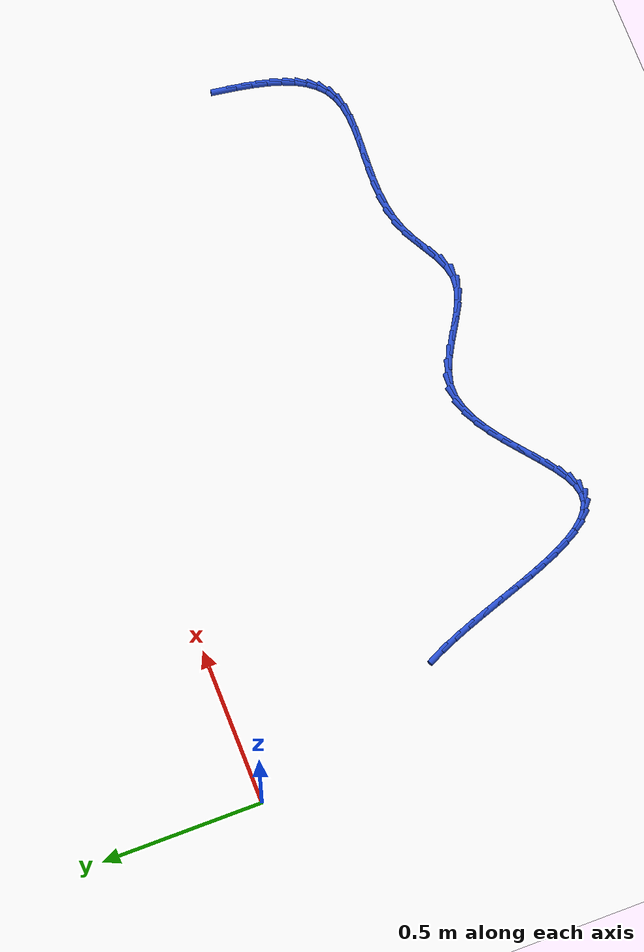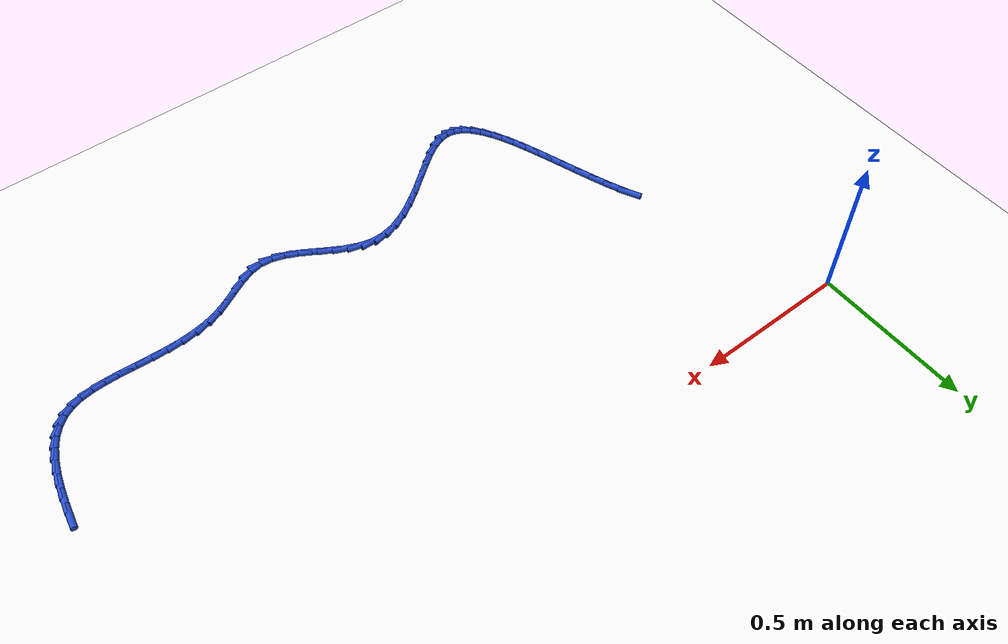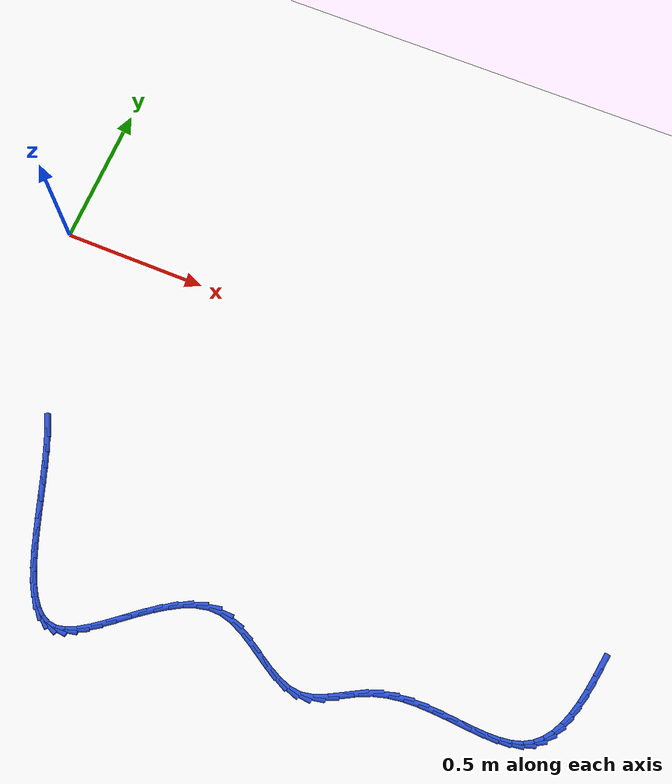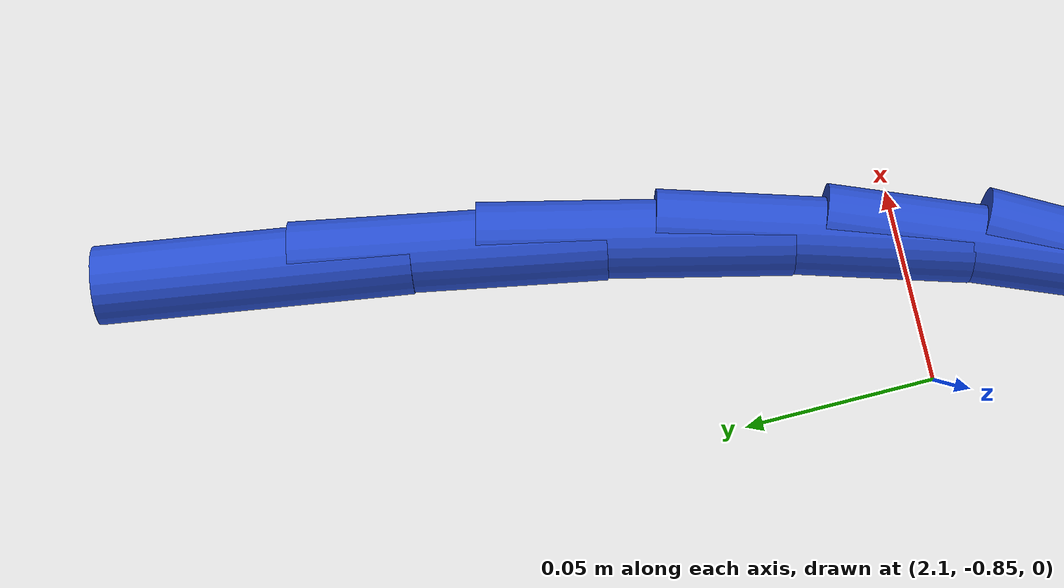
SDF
<sdf version="1.6">
 <world name="default">
  <model name="ground_plane">
   <static>1</static>
   <link name="link">
    <collision name="collision">
     <geometry><plane><normal>0 0 1</normal><size>100 100</size></plane></geometry>
     <surface><friction><ode><mu>100</mu><mu2>50</mu2></ode></friction></surface>
    </collision>
    <visual name="visual">
     <cast_shadows>0</cast_shadows>
     <geometry><plane><normal>0 0 1</normal><size>100 100</size></plane></geometry>
     <material>
      <script><uri>file://media/materials/scripts/gazebo.material</uri><name>Gazebo/WhiteGlow</name></script>
     </material>
    </visual>
   </link>
  </model>
  <model name="line">
   <link name="link_104">
    <pose>2.1703468526651086 -0.6886057318731035 0.01 0 1.57 1.4190917452665543</pose>
    <collision name="collision">
     <geometry><cylinder><radius>0.01</radius><length>0.08</length></cylinder></geometry>
    </collision>
    <visual name="visual">
     <material>
      <script><name>Gazebo/Blue</name><uri>file://media/materials/scripts/gazebo.material</uri></script>
     </material>
     <geometry><cylinder><radius>0.01</radius><length>0.08</length></cylinder></geometry>
    </visual>
   </link>
   <link name="link_105">
    <pose>2.1628964918792097 -0.7373393820390889 0.01 0 1.57 1.3857760278045292</pose>
    <collision name="collision">
     <geometry><cylinder><radius>0.01</radius><length>0.08</length></cylinder></geometry>
    </collision>
    <visual name="visual">
     <material>
      <script><name>Gazebo/Blue</name><uri>file://media/materials/scripts/gazebo.material</uri></script>
     </material>
     <geometry><cylinder><radius>0.01</radius><length>0.08</length></cylinder></geometry>
    </visual>
   </link>
   <link name="link_106">
    <pose>2.154196091205407 -0.7838256030349702 0.01 0 1.57 1.3380097028746802</pose>
    <collision name="collision">
     <geometry><cylinder><radius>0.01</radius><length>0.08</length></cylinder></geometry>
    </collision>
    <visual name="visual">
     <material>
      <script><name>Gazebo/Blue</name><uri>file://media/materials/scripts/gazebo.material</uri></script>
     </material>
     <geometry><cylinder><radius>0.01</radius><length>0.08</length></cylinder></geometry>
    </visual>
   </link>
   <link name="link_107">
    <pose>2.1438269657012787 -0.8275615597880047 0.01 0 1.57 1.2722912698321056</pose>
    <collision name="collision">
     <geometry><cylinder><radius>0.01</radius><length>0.08</length></cylinder></geometry>
    </collision>
    <visual name="visual">
     <material>
      <script><name>Gazebo/Blue</name><uri>file://media/materials/scripts/gazebo.material</uri></script>
     </material>
     <geometry><cylinder><radius>0.01</radius><length>0.08</length></cylinder></geometry>
    </visual>
   </link>
   <link name="link_108">
    <pose>2.1313704304244028 -0.8680444172254503 0.01 0 1.57 1.183925057848256</pose>
    <collision name="collision">
     <geometry><cylinder><radius>0.01</radius><length>0.08</length></cylinder></geometry>
    </collision>
    <visual name="visual">
     <material>
      <script><name>Gazebo/Blue</name><uri>file://media/materials/scripts/gazebo.material</uri></script>
     </material>
     <geometry><cylinder><radius>0.01</radius><length>0.08</length></cylinder></geometry>
    </visual>
   </link>
   <link name="link_109">
    <pose>2.116407800432357 -0.9047713402745656 0.01 0 1.57 1.0672457691711228</pose>
    <collision name="collision">
     <geometry><cylinder><radius>0.01</radius><length>0.08</length></cylinder></geometry>
    </collision>
    <visual name="visual">
     <material>
      <script><name>Gazebo/Blue</name><uri>file://media/materials/scripts/gazebo.material</uri></script>
     </material>
     <geometry><cylinder><radius>0.01</radius><length>0.08</length></cylinder></geometry>
    </visual>
   </link>
   <link name="link_110">
    <pose>2.0985203907827183 -0.9372394938626057 0.01 0 1.57 0.9169594524248734</pose>
    <collision name="collision">
     <geometry><cylinder><radius>0.01</radius><length>0.08</length></cylinder></geometry>
    </collision>
    <visual name="visual">
     <material>
      <script><name>Gazebo/Blue</name><uri>file://media/materials/scripts/gazebo.material</uri></script>
     </material>
     <geometry><cylinder><radius>0.01</radius><length>0.08</length></cylinder></geometry>
    </visual>
   </link>
   <link name="link_111">
    <pose>2.0772895165330656 -0.9649460429168301 0.01 0 1.57 0.7316730152754719</pose>
    <collision name="collision">
     <geometry><cylinder><radius>0.01</radius><length>0.08</length></cylinder></geometry>
    </collision>
    <visual name="visual">
     <material>
      <script><name>Gazebo/Blue</name><uri>file://media/materials/scripts/gazebo.material</uri></script>
     </material>
     <geometry><cylinder><radius>0.01</radius><length>0.08</length></cylinder></geometry>
    </visual>
   </link>
   <link name="link_112">
    <pose>2.0522964927409766 -0.9873881523644956 0.01 0 1.57 0.519252090926155</pose>
    <collision name="collision">
     <geometry><cylinder><radius>0.01</radius><length>0.08</length></cylinder></geometry>
    </collision>
    <visual name="visual">
     <material>
      <script><name>Gazebo/Blue</name><uri>file://media/materials/scripts/gazebo.material</uri></script>
     </material>
     <geometry><cylinder><radius>0.01</radius><length>0.08</length></cylinder></geometry>
    </visual>
   </link>
   <link name="link_113">
    <pose>2.0231226541383864 -1.0040630188250987 0.01 0 1.57 0.30926762508102007</pose>
    <collision name="collision">
     <geometry><cylinder><radius>0.01</radius><length>0.08</length></cylinder></geometry>
    </collision>
    <visual name="visual">
     <material>
      <script><name>Gazebo/Blue</name><uri>file://media/materials/scripts/gazebo.material</uri></script>
     </material>
     <geometry><cylinder><radius>0.01</radius><length>0.08</length></cylinder></geometry>
    </visual>
   </link>
   <link name="link_114">
    <pose>1.9895495242676668 -1.0147903110101992 0.01 0 1.57 0.1512554055576779</pose>
    <collision name="collision">
     <geometry><cylinder><radius>0.01</radius><length>0.08</length></cylinder></geometry>
    </collision>
    <visual name="visual">
     <material>
      <script><name>Gazebo/Blue</name><uri>file://media/materials/scripts/gazebo.material</uri></script>
     </material>
     <geometry><cylinder><radius>0.01</radius><length>0.08</length></cylinder></geometry>
    </visual>
   </link>
   <link name="link_115">
    <pose>1.9520514644036886 -1.020505748186707 0.01 0 1.57 0.04606126556036913</pose>
    <collision name="collision">
     <geometry><cylinder><radius>0.01</radius><length>0.08</length></cylinder></geometry>
    </collision>
    <visual name="visual">
     <material>
      <script><name>Gazebo/Blue</name><uri>file://media/materials/scripts/gazebo.material</uri></script>
     </material>
     <geometry><cylinder><radius>0.01</radius><length>0.08</length></cylinder></geometry>
    </visual>
   </link>
   <link name="link_116">
    <pose>1.911252618081356 -1.0223863248388678 0.01 0 1.57 -0.017876891020092205</pose>
    <collision name="collision">
     <geometry><cylinder><radius>0.01</radius><length>0.08</length></cylinder></geometry>
    </collision>
    <visual name="visual">
     <material>
      <script><name>Gazebo/Blue</name><uri>file://media/materials/scripts/gazebo.material</uri></script>
     </material>
     <geometry><cylinder><radius>0.01</radius><length>0.08</length></cylinder></geometry>
    </visual>
   </link>
   <link name="link_117">
    <pose>1.867777128835569 -1.0216090354509264 0.01 0 1.57 -0.04955878729454385</pose>
    <collision name="collision">
     <geometry><cylinder><radius>0.01</radius><length>0.08</length></cylinder></geometry>
    </collision>
    <visual name="visual">
     <material>
      <script><name>Gazebo/Blue</name><uri>file://media/materials/scripts/gazebo.material</uri></script>
     </material>
     <geometry><cylinder><radius>0.01</radius><length>0.08</length></cylinder></geometry>
    </visual>
   </link>
   <link name="link_118">
    <pose>1.8222491402012297 -1.0193508745071282 0.01 0 1.57 -0.054508078883641335</pose>
    <collision name="collision">
     <geometry><cylinder><radius>0.01</radius><length>0.08</length></cylinder></geometry>
    </collision>
    <visual name="visual">
     <material>
      <script><name>Gazebo/Blue</name><uri>file://media/materials/scripts/gazebo.material</uri></script>
     </material>
     <geometry><cylinder><radius>0.01</radius><length>0.08</length></cylinder></geometry>
    </visual>
   </link>
   <link name="link_119">
    <pose>1.7752927957132385 -1.0167888364917177 0.01 0 1.57 -0.035347517940446646</pose>
    <collision name="collision">
     <geometry><cylinder><radius>0.01</radius><length>0.08</length></cylinder></geometry>
    </collision>
    <visual name="visual">
     <material>
      <script><name>Gazebo/Blue</name><uri>file://media/materials/scripts/gazebo.material</uri></script>
     </material>
     <geometry><cylinder><radius>0.01</radius><length>0.08</length></cylinder></geometry>
    </visual>
   </link>
   <link name="link_120">
    <pose>1.7275322389064969 -1.0150999158889402 0.01 0 1.57 0.007533995557105325</pose>
    <collision name="collision">
     <geometry><cylinder><radius>0.01</radius><length>0.08</length></cylinder></geometry>
    </collision>
    <visual name="visual">
     <material>
      <script><name>Gazebo/Blue</name><uri>file://media/materials/scripts/gazebo.material</uri></script>
     </material>
     <geometry><cylinder><radius>0.01</radius><length>0.08</length></cylinder></geometry>
    </visual>
   </link>
   <link name="link_121">
    <pose>1.6795916133159072 -1.0154611071830408 0.01 0 1.57 0.0754053515830477</pose>
    <collision name="collision">
     <geometry><cylinder><radius>0.01</radius><length>0.08</length></cylinder></geometry>
    </collision>
    <visual name="visual">
     <material>
      <script><name>Gazebo/Blue</name><uri>file://media/materials/scripts/gazebo.material</uri></script>
     </material>
     <geometry><cylinder><radius>0.01</radius><length>0.08</length></cylinder></geometry>
    </visual>
   </link>
   <link name="link_122">
    <pose>1.6320950624763708 -1.0190494048582643 0.01 0 1.57 0.170474024691983</pose>
    <collision name="collision">
     <geometry><cylinder><radius>0.01</radius><length>0.08</length></cylinder></geometry>
    </collision>
    <visual name="visual">
     <material>
      <script><name>Gazebo/Blue</name><uri>file://media/materials/scripts/gazebo.material</uri></script>
     </material>
     <geometry><cylinder><radius>0.01</radius><length>0.08</length></cylinder></geometry>
    </visual>
   </link>
   <link name="link_123">
    <pose>1.5856667299227891 -1.0270418033988564 0.01 0 1.57 0.2945854232482009</pose>
    <collision name="collision">
     <geometry><cylinder><radius>0.01</radius><length>0.08</length></cylinder></geometry>
    </collision>
    <visual name="visual">
     <material>
      <script><name>Gazebo/Blue</name><uri>file://media/materials/scripts/gazebo.material</uri></script>
     </material>
     <geometry><cylinder><radius>0.01</radius><length>0.08</length></cylinder></geometry>
    </visual>
   </link>
   <link name="link_124">
    <pose>1.5409307591900634 -1.0406152972890614 0.01 0 1.57 0.4301657949354855</pose>
    <collision name="collision">
     <geometry><cylinder><radius>0.01</radius><length>0.08</length></cylinder></geometry>
    </collision>
    <visual name="visual">
     <material>
      <script><name>Gazebo/Blue</name><uri>file://media/materials/scripts/gazebo.material</uri></script>
     </material>
     <geometry><cylinder><radius>0.01</radius><length>0.08</length></cylinder></geometry>
    </visual>
   </link>
   <link name="link_125">
    <pose>1.498328036611697 -1.0601623511371168 0.01 0 1.57 0.5040852747592641</pose>
    <collision name="collision">
     <geometry><cylinder><radius>0.01</radius><length>0.08</length></cylinder></geometry>
    </collision>
    <visual name="visual">
     <material>
      <script><name>Gazebo/Blue</name><uri>file://media/materials/scripts/gazebo.material</uri></script>
     </material>
     <geometry><cylinder><radius>0.01</radius><length>0.08</length></cylinder></geometry>
    </visual>
   </link>
   <link name="link_126">
    <pose>1.4575063945095406 -1.0826803402413827 0.01 0 1.57 0.4986494217577115</pose>
    <collision name="collision">
     <geometry><cylinder><radius>0.01</radius><length>0.08</length></cylinder></geometry>
    </collision>
    <visual name="visual">
     <material>
      <script><name>Gazebo/Blue</name><uri>file://media/materials/scripts/gazebo.material</uri></script>
     </material>
     <geometry><cylinder><radius>0.01</radius><length>0.08</length></cylinder></geometry>
    </visual>
   </link>
   <link name="link_127">
    <pose>1.4178991866377124 -1.1042484503673156 0.01 0 1.57 0.40490275478351334</pose>
    <collision name="collision">
     <geometry><cylinder><radius>0.01</radius><length>0.08</length></cylinder></geometry>
    </collision>
    <visual name="visual">
     <material>
      <script><name>Gazebo/Blue</name><uri>file://media/materials/scripts/gazebo.material</uri></script>
     </material>
     <geometry><cylinder><radius>0.01</radius><length>0.08</length></cylinder></geometry>
    </visual>
   </link>
   <link name="link_128">
    <pose>1.3789397631707607 -1.120945851956137 0.01 0 1.57 0.2006147724476033</pose>
    <collision name="collision">
     <geometry><cylinder><radius>0.01</radius><length>0.08</length></cylinder></geometry>
    </collision>
    <visual name="visual">
     <material>
      <script><name>Gazebo/Blue</name><uri>file://media/materials/scripts/gazebo.material</uri></script>
     </material>
     <geometry><cylinder><radius>0.01</radius><length>0.08</length></cylinder></geometry>
    </visual>
   </link>
   <link name="link_129">
    <pose>1.3400614779119584 -1.1288517570813905 0.01 0 1.57 -0.09038112017274956</pose>
    <collision name="collision">
     <geometry><cylinder><radius>0.01</radius><length>0.08</length></cylinder></geometry>
    </collision>
    <visual name="visual">
     <material>
      <script><name>Gazebo/Blue</name><uri>file://media/materials/scripts/gazebo.material</uri></script>
     </material>
     <geometry><cylinder><radius>0.01</radius><length>0.08</length></cylinder></geometry>
    </visual>
   </link>
   <link name="link_130">
    <pose>1.3008065298936833 -1.1252941585871317 0.01 0 1.57 -0.32038771802011</pose>
    <collision name="collision">
     <geometry><cylinder><radius>0.01</radius><length>0.08</length></cylinder></geometry>
    </collision>
    <visual name="visual">
     <material>
      <script><name>Gazebo/Blue</name><uri>file://media/materials/scripts/gazebo.material</uri></script>
     </material>
     <geometry><cylinder><radius>0.01</radius><length>0.08</length></cylinder></geometry>
    </visual>
   </link>
   <link name="link_131">
    <pose>1.2611112103596285 -1.1121224672917622 0.01 0 1.57 -0.460817163848662</pose>
    <collision name="collision">
     <geometry><cylinder><radius>0.01</radius><length>0.08</length></cylinder></geometry>
    </collision>
    <visual name="visual">
     <material>
      <script><name>Gazebo/Blue</name><uri>file://media/materials/scripts/gazebo.material</uri></script>
     </material>
     <geometry><cylinder><radius>0.01</radius><length>0.08</length></cylinder></geometry>
    </visual>
   </link>
   <link name="link_132">
    <pose>1.2210009735832577 -1.0922090610093877 0.01 0 1.57 -0.5309787990489399</pose>
    <collision name="collision">
     <geometry><cylinder><radius>0.01</radius><length>0.08</length></cylinder></geometry>
    </collision>
    <visual name="visual">
     <material>
      <script><name>Gazebo/Blue</name><uri>file://media/materials/scripts/gazebo.material</uri></script>
     </material>
     <geometry><cylinder><radius>0.01</radius><length>0.08</length></cylinder></geometry>
    </visual>
   </link>
   <link name="link_133">
    <pose>1.180501273838031 -1.0684263175541142 0.01 0 1.57 -0.5451112040606868</pose>
    <collision name="collision">
     <geometry><cylinder><radius>0.01</radius><length>0.08</length></cylinder></geometry>
    </collision>
    <visual name="visual">
     <material>
      <script><name>Gazebo/Blue</name><uri>file://media/materials/scripts/gazebo.material</uri></script>
     </material>
     <geometry><cylinder><radius>0.01</radius><length>0.08</length></cylinder></geometry>
    </visual>
   </link>
   <link name="link_134">
    <pose>1.1396375653974105 -1.0436466147400476 0.01 0 1.57 -0.5073606802782107</pose>
    <collision name="collision">
     <geometry><cylinder><radius>0.01</radius><length>0.08</length></cylinder></geometry>
    </collision>
    <visual name="visual">
     <material>
      <script><name>Gazebo/Blue</name><uri>file://media/materials/scripts/gazebo.material</uri></script>
     </material>
     <geometry><cylinder><radius>0.01</radius><length>0.08</length></cylinder></geometry>
    </visual>
   </link>
   <link name="link_135">
    <pose>1.0984353025348585 -1.0207423303812944 0.01 0 1.57 -0.4122793582619524</pose>
    <collision name="collision">
     <geometry><cylinder><radius>0.01</radius><length>0.08</length></cylinder></geometry>
    </collision>
    <visual name="visual">
     <material>
      <script><name>Gazebo/Blue</name><uri>file://media/materials/scripts/gazebo.material</uri></script>
     </material>
     <geometry><cylinder><radius>0.01</radius><length>0.08</length></cylinder></geometry>
    </visual>
   </link>
   <link name="link_136">
    <pose>1.056919939523836 -1.00258584229196 0.01 0 1.57 -0.24690411962266706</pose>
    <collision name="collision">
     <geometry><cylinder><radius>0.01</radius><length>0.08</length></cylinder></geometry>
    </collision>
    <visual name="visual">
     <material>
      <script><name>Gazebo/Blue</name><uri>file://media/materials/scripts/gazebo.material</uri></script>
     </material>
     <geometry><cylinder><radius>0.01</radius><length>0.08</length></cylinder></geometry>
    </visual>
   </link>
   <link name="link_137">
    <pose>1.0151169306378045 -0.9920495282861506 0.01 0 1.57 -0.008073643543524316</pose>
    <collision name="collision">
     <geometry><cylinder><radius>0.01</radius><length>0.08</length></cylinder></geometry>
    </collision>
    <visual name="visual">
     <material>
      <script><name>Gazebo/Blue</name><uri>file://media/materials/scripts/gazebo.material</uri></script>
     </material>
     <geometry><cylinder><radius>0.01</radius><length>0.08</length></cylinder></geometry>
    </visual>
   </link>
   <link name="link_138">
    <pose>0.9730642956523036 -0.9917100029240042 0.01 0 1.57 0.22386008948863376</pose>
    <collision name="collision">
     <geometry><cylinder><radius>0.01</radius><length>0.08</length></cylinder></geometry>
    </collision>
    <visual name="visual">
     <material>
      <script><name>Gazebo/Blue</name><uri>file://media/materials/scripts/gazebo.material</uri></script>
     </material>
     <geometry><cylinder><radius>0.01</radius><length>0.08</length></cylinder></geometry>
    </visual>
   </link>
   <link name="link_139">
    <pose>0.9309206599537849 -1.0013050998149735 0.01 0 1.57 0.3984759741118265</pose>
    <collision name="collision">
     <geometry><cylinder><radius>0.01</radius><length>0.08</length></cylinder></geometry>
    </collision>
    <visual name="visual">
     <material>
      <script><name>Gazebo/Blue</name><uri>file://media/materials/scripts/gazebo.material</uri></script>
     </material>
     <geometry><cylinder><radius>0.01</radius><length>0.08</length></cylinder></geometry>
    </visual>
   </link>
   <link name="link_140">
    <pose>0.8889118574026534 -1.0189907184102702 0.01 0 1.57 0.5212504432036695</pose>
    <collision name="collision">
     <geometry><cylinder><radius>0.01</radius><length>0.08</length></cylinder></geometry>
    </collision>
    <visual name="visual">
     <material>
      <script><name>Gazebo/Blue</name><uri>file://media/materials/scripts/gazebo.material</uri></script>
     </material>
     <geometry><cylinder><radius>0.01</radius><length>0.08</length></cylinder></geometry>
    </visual>
   </link>
   <link name="link_141">
    <pose>0.8472644493637882 -1.0429056343653877 0.01 0 1.57 0.6031900234459827</pose>
    <collision name="collision">
     <geometry><cylinder><radius>0.01</radius><length>0.08</length></cylinder></geometry>
    </collision>
    <visual name="visual">
     <material>
      <script><name>Gazebo/Blue</name><uri>file://media/materials/scripts/gazebo.material</uri></script>
     </material>
     <geometry><cylinder><radius>0.01</radius><length>0.08</length></cylinder></geometry>
    </visual>
   </link>
   <link name="link_142">
    <pose>0.8062049972020676 -1.0711886233358205 0.01 0 1.57 0.6530707908356759</pose>
    <collision name="collision">
     <geometry><cylinder><radius>0.01</radius><length>0.08</length></cylinder></geometry>
    </collision>
    <visual name="visual">
     <material>
      <script><name>Gazebo/Blue</name><uri>file://media/materials/scripts/gazebo.material</uri></script>
     </material>
     <geometry><cylinder><radius>0.01</radius><length>0.08</length></cylinder></geometry>
    </visual>
   </link>
   <link name="link_143">
    <pose>0.7659600622823726 -1.1019784609770615 0.01 0 1.57 0.6758656412653449</pose>
    <collision name="collision">
     <geometry><cylinder><radius>0.01</radius><length>0.08</length></cylinder></geometry>
    </collision>
    <visual name="visual">
     <material>
      <script><name>Gazebo/Blue</name><uri>file://media/materials/scripts/gazebo.material</uri></script>
     </material>
     <geometry><cylinder><radius>0.01</radius><length>0.08</length></cylinder></geometry>
    </visual>
   </link>
   <link name="link_144">
    <pose>0.7267562059695813 -1.1334139229446043 0.01 0 1.57 0.672662266325568</pose>
    <collision name="collision">
     <geometry><cylinder><radius>0.01</radius><length>0.08</length></cylinder></geometry>
    </collision>
    <visual name="visual">
     <material>
      <script><name>Gazebo/Blue</name><uri>file://media/materials/scripts/gazebo.material</uri></script>
     </material>
     <geometry><cylinder><radius>0.01</radius><length>0.08</length></cylinder></geometry>
    </visual>
   </link>
   <link name="link_145">
    <pose>0.6888199896285734 -1.1636337848939438 0.01 0 1.57 0.6401828813244004</pose>
    <collision name="collision">
     <geometry><cylinder><radius>0.01</radius><length>0.08</length></cylinder></geometry>
    </collision>
    <visual name="visual">
     <material>
      <script><name>Gazebo/Blue</name><uri>file://media/materials/scripts/gazebo.material</uri></script>
     </material>
     <geometry><cylinder><radius>0.01</radius><length>0.08</length></cylinder></geometry>
    </visual>
   </link>
   <link name="link_146">
    <pose>0.6523779746242281 -1.1907768224805735 0.01 0 1.57 0.5689736905161288</pose>
    <collision name="collision">
     <geometry><cylinder><radius>0.01</radius><length>0.08</length></cylinder></geometry>
    </collision>
    <visual name="visual">
     <material>
      <script><name>Gazebo/Blue</name><uri>file://media/materials/scripts/gazebo.material</uri></script>
     </material>
     <geometry><cylinder><radius>0.01</radius><length>0.08</length></cylinder></geometry>
    </visual>
   </link>
   <link name="link_147">
    <pose>0.6176567223214241 -1.2129818113599866 0.01 0 1.57 0.4394101082156216</pose>
    <collision name="collision">
     <geometry><cylinder><radius>0.01</radius><length>0.08</length></cylinder></geometry>
    </collision>
    <visual name="visual">
     <material>
      <script><name>Gazebo/Blue</name><uri>file://media/materials/scripts/gazebo.material</uri></script>
     </material>
     <geometry><cylinder><radius>0.01</radius><length>0.08</length></cylinder></geometry>
    </visual>
   </link>
   <link name="link_148">
    <pose>0.5848827940850405 -1.2283875271876776 0.01 0 1.57 0.21708768777917953</pose>
    <collision name="collision">
     <geometry><cylinder><radius>0.01</radius><length>0.08</length></cylinder></geometry>
    </collision>
    <visual name="visual">
     <material>
      <script><name>Gazebo/Blue</name><uri>file://media/materials/scripts/gazebo.material</uri></script>
     </material>
     <geometry><cylinder><radius>0.01</radius><length>0.08</length></cylinder></geometry>
    </visual>
   </link>
   <link name="link_149">
    <pose>0.5542820472051304 -1.2351369337613578 0.01 0 1.57 -0.1043489297382931</pose>
    <collision name="collision">
     <geometry><cylinder><radius>0.01</radius><length>0.08</length></cylinder></geometry>
    </collision>
    <visual name="visual">
     <material>
      <script><name>Gazebo/Blue</name><uri>file://media/materials/scripts/gazebo.material</uri></script>
     </material>
     <geometry><cylinder><radius>0.01</radius><length>0.08</length></cylinder></geometry>
    </visual>
   </link>
   <link name="link_150">
    <pose>0.525946459714385 -1.232169366724733 0.01 0 1.57 -0.4288489254318348</pose>
    <collision name="collision">
     <geometry><cylinder><radius>0.01</radius><length>0.08</length></cylinder></geometry>
    </collision>
    <visual name="visual">
     <material>
      <script><name>Gazebo/Blue</name><uri>file://media/materials/scripts/gazebo.material</uri></script>
     </material>
     <geometry><cylinder><radius>0.01</radius><length>0.08</length></cylinder></geometry>
    </visual>
   </link>
   <link name="link_151">
    <pose>0.4996765307433087 -1.2201580045585527 0.01 0 1.57 -0.6895359032099825</pose>
    <collision name="collision">
     <geometry><cylinder><radius>0.01</radius><length>0.08</length></cylinder></geometry>
    </collision>
    <visual name="visual">
     <material>
      <script><name>Gazebo/Blue</name><uri>file://media/materials/scripts/gazebo.material</uri></script>
     </material>
     <geometry><cylinder><radius>0.01</radius><length>0.08</length></cylinder></geometry>
    </visual>
   </link>
   <link name="link_152">
    <pose>0.47523441616141543 -1.2000041080778912 0.01 0 1.57 -0.8755663046576292</pose>
    <collision name="collision">
     <geometry><cylinder><radius>0.01</radius><length>0.08</length></cylinder></geometry>
    </collision>
    <visual name="visual">
     <material>
      <script><name>Gazebo/Blue</name><uri>file://media/materials/scripts/gazebo.material</uri></script>
     </material>
     <geometry><cylinder><radius>0.01</radius><length>0.08</length></cylinder></geometry>
    </visual>
   </link>
   <link name="link_153">
    <pose>0.45238227183821933 -1.1726089380978233 0.01 0 1.57 -1.0033885621699885</pose>
    <collision name="collision">
     <geometry><cylinder><radius>0.01</radius><length>0.08</length></cylinder></geometry>
    </collision>
    <visual name="visual">
     <material>
      <script><name>Gazebo/Blue</name><uri>file://media/materials/scripts/gazebo.material</uri></script>
     </material>
     <geometry><cylinder><radius>0.01</radius><length>0.08</length></cylinder></geometry>
    </visual>
   </link>
   <link name="link_154">
    <pose>0.4308822536432341 -1.1388737554334232 0.01 0 1.57 -1.0909698446960057</pose>
    <collision name="collision">
     <geometry><cylinder><radius>0.01</radius><length>0.08</length></cylinder></geometry>
    </collision>
    <visual name="visual">
     <material>
      <script><name>Gazebo/Blue</name><uri>file://media/materials/scripts/gazebo.material</uri></script>
     </material>
     <geometry><cylinder><radius>0.01</radius><length>0.08</length></cylinder></geometry>
    </visual>
   </link>
   <link name="link_155">
    <pose>0.41049651744597443 -1.0996998208997668 0.01 0 1.57 -1.151006618844965</pose>
    <collision name="collision">
     <geometry><cylinder><radius>0.01</radius><length>0.08</length></cylinder></geometry>
    </collision>
    <visual name="visual">
     <material>
      <script><name>Gazebo/Blue</name><uri>file://media/materials/scripts/gazebo.material</uri></script>
     </material>
     <geometry><cylinder><radius>0.01</radius><length>0.08</length></cylinder></geometry>
    </visual>
   </link>
   <link name="link_156">
    <pose>0.39098721911595413 -1.0559883953119287 0.01 0 1.57 -1.1915351730103012</pose>
    <collision name="collision">
     <geometry><cylinder><radius>0.01</radius><length>0.08</length></cylinder></geometry>
    </collision>
    <visual name="visual">
     <material>
      <script><name>Gazebo/Blue</name><uri>file://media/materials/scripts/gazebo.material</uri></script>
     </material>
     <geometry><cylinder><radius>0.01</radius><length>0.08</length></cylinder></geometry>
    </visual>
   </link>
   <link name="link_157">
    <pose>0.37211651452268685 -1.0086407394849837 0.01 0 1.57 -1.217481412086506</pose>
    <collision name="collision">
     <geometry><cylinder><radius>0.01</radius><length>0.08</length></cylinder></geometry>
    </collision>
    <visual name="visual">
     <material>
      <script><name>Gazebo/Blue</name><uri>file://media/materials/scripts/gazebo.material</uri></script>
     </material>
     <geometry><cylinder><radius>0.01</radius><length>0.08</length></cylinder></geometry>
    </visual>
   </link>
   <link name="link_158">
    <pose>0.3536465595356868 -0.9585581142340059 0.01 0 1.57 -1.2317839983782775</pose>
    <collision name="collision">
     <geometry><cylinder><radius>0.01</radius><length>0.08</length></cylinder></geometry>
    </collision>
    <visual name="visual">
     <material>
      <script><name>Gazebo/Blue</name><uri>file://media/materials/scripts/gazebo.material</uri></script>
     </material>
     <geometry><cylinder><radius>0.01</radius><length>0.08</length></cylinder></geometry>
    </visual>
   </link>
   <link name="link_159">
    <pose>0.3353395100244676 -0.9066417803740698 0.01 0 1.57 -1.2360628106932248</pose>
    <collision name="collision">
     <geometry><cylinder><radius>0.01</radius><length>0.08</length></cylinder></geometry>
    </collision>
    <visual name="visual">
     <material>
      <script><name>Gazebo/Blue</name><uri>file://media/materials/scripts/gazebo.material</uri></script>
     </material>
     <geometry><cylinder><radius>0.01</radius><length>0.08</length></cylinder></geometry>
    </visual>
   </link>
   <link name="link_160">
    <pose>0.3169575218585439 -0.8537929987202518 0.01 0 1.57 -1.2309782652404746</pose>
    <collision name="collision">
     <geometry><cylinder><radius>0.01</radius><length>0.08</length></cylinder></geometry>
    </collision>
    <visual name="visual">
     <material>
      <script><name>Gazebo/Blue</name><uri>file://media/materials/scripts/gazebo.material</uri></script>
     </material>
     <geometry><cylinder><radius>0.01</radius><length>0.08</length></cylinder></geometry>
    </visual>
   </link>
   <link name="link_161">
    <pose>0.29826275090742943 -0.8009130300876257 0.01 0 1.57 -1.2163870355792517</pose>
    <collision name="collision">
     <geometry><cylinder><radius>0.01</radius><length>0.08</length></cylinder></geometry>
    </collision>
    <visual name="visual">
     <material>
      <script><name>Gazebo/Blue</name><uri>file://media/materials/scripts/gazebo.material</uri></script>
     </material>
     <geometry><cylinder><radius>0.01</radius><length>0.08</length></cylinder></geometry>
    </visual>
   </link>
   <link name="link_162">
    <pose>0.2790173530406381 -0.7489031352912665 0.01 0 1.57 -1.191346651741244</pose>
    <collision name="collision">
     <geometry><cylinder><radius>0.01</radius><length>0.08</length></cylinder></geometry>
    </collision>
    <visual name="visual">
     <material>
      <script><name>Gazebo/Blue</name><uri>file://media/materials/scripts/gazebo.material</uri></script>
     </material>
     <geometry><cylinder><radius>0.01</radius><length>0.08</length></cylinder></geometry>
    </visual>
   </link>
   <link name="link_163">
    <pose>0.258983484127684 -0.6986645751462489 0.01 0 1.57 -1.1539816261681581</pose>
    <collision name="collision">
     <geometry><cylinder><radius>0.01</radius><length>0.08</length></cylinder></geometry>
    </collision>
    <visual name="visual">
     <material>
      <script><name>Gazebo/Blue</name><uri>file://media/materials/scripts/gazebo.material</uri></script>
     </material>
     <geometry><cylinder><radius>0.01</radius><length>0.08</length></cylinder></geometry>
    </visual>
   </link>
   <link name="link_164">
    <pose>0.23792330003808107 -0.6510986104676477 0.01 0 1.57 -1.1037480138419271</pose>
    <collision name="collision">
     <geometry><cylinder><radius>0.01</radius><length>0.08</length></cylinder></geometry>
    </collision>
    <visual name="visual">
     <material>
      <script><name>Gazebo/Blue</name><uri>file://media/materials/scripts/gazebo.material</uri></script>
     </material>
     <geometry><cylinder><radius>0.01</radius><length>0.08</length></cylinder></geometry>
    </visual>
   </link>
  </model>
 </world>
</sdf>
